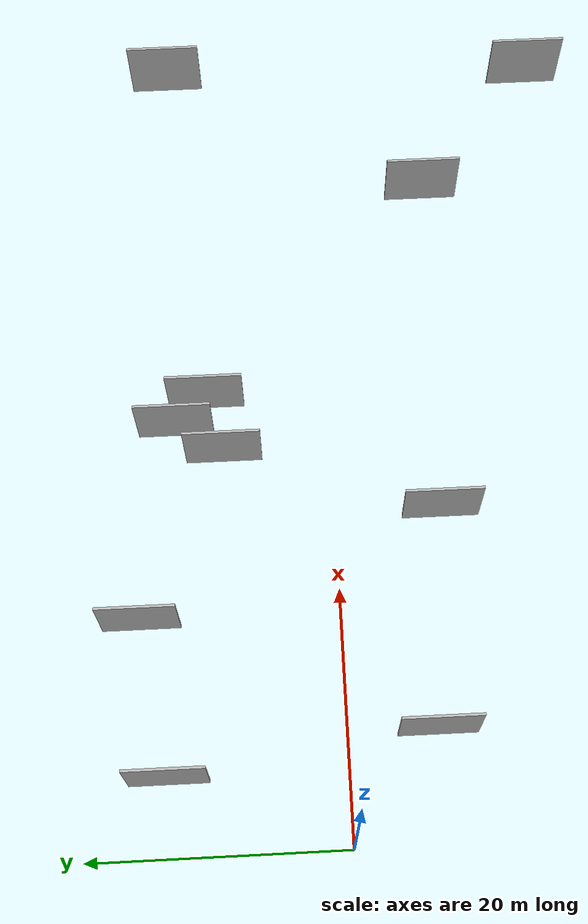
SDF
<sdf version="1.6">
 <world name="default">
  <scene>
   <sky><clouds><speed>12</speed></clouds></sky>
   <ambient>0.4 0.4 0.4 1</ambient>
   <background>0.7 0.7 0.7 1</background>
   <shadows>1</shadows>
  </scene>
  <gravity>0 0 -9.8066</gravity>
  <magnetic_field>6e-06 2.3e-05 -4.2e-05</magnetic_field>
  <physics default="0" name="default_physics" type="ode">
   <ode>
    <solver>
     <type>quick</type>
     <iters>10</iters>
     <sor>1.0</sor>
     <use_dynamic_moi_rescaling>0</use_dynamic_moi_rescaling>
    </solver>
    <constraints>
     <cfm>0</cfm>
     <erp>0.2</erp>
     <contact_max_correcting_vel>100</contact_max_correcting_vel>
     <contact_surface_layer>0.001</contact_surface_layer>
    </constraints>
   </ode>
   <max_step_size>0.004</max_step_size>
   <real_time_factor>1</real_time_factor>
   <real_time_update_rate>250</real_time_update_rate>
  </physics>
  <light name="sun" type="directional">
   <pose>0 0 10 0 0 0</pose>
   <diffuse>0.8 0.8 0.8 1</diffuse>
   <specular>0.2 0.2 0.2 1</specular>
   <attenuation>
    <range>1000</range>
    <constant>0.9</constant>
    <linear>0.01</linear>
    <quadratic>0.001</quadratic>
   </attenuation>
   <direction>-0.5 0.1 -0.9</direction>
  </light>
  <model name="grey_wall_1">
   <static>1</static>
   <pose>65.9148 12.7383 2.5 0.000000 0.000000 1.570796</pose>
   <link name="link">
    <pose>0 0 3.00 0 0 0</pose>
    <collision name="collision"><geometry><box><size>6.00 0.2 6.00</size></box></geometry></collision>
    <visual name="visual">
     <cast_shadows>0</cast_shadows>
     <geometry><box><size>6.00 0.2 6.00</size></box></geometry>
     <material>
      <script>
       <uri>model://HANNAS_wall/materials/scripts</uri>
       <uri>model://HANNAS_wall/materials/textures</uri>
       <name>vrc/HANNAS_wall</name>
      </script>
     </material>
    </visual>
   </link>
  </model>
  <model name="grey_wall_2">
   <static>1</static>
   <pose>30.3838 8.6435 2.5 0.000000 0.000000 1.570796</pose>
   <link name="link">
    <pose>0 0 3.00 0 0 0</pose>
    <collision name="collision"><geometry><box><size>6.00 0.2 6.00</size></box></geometry></collision>
    <visual name="visual">
     <cast_shadows>0</cast_shadows>
     <geometry><box><size>6.00 0.2 6.00</size></box></geometry>
     <material>
      <script>
       <uri>model://HANNAS_wall/materials/scripts</uri>
       <uri>model://HANNAS_wall/materials/textures</uri>
       <name>vrc/HANNAS_wall</name>
      </script>
     </material>
    </visual>
   </link>
  </model>
  <model name="grey_wall_3">
   <static>1</static>
   <pose>5.1232 13.3536 2.5 0.000000 0.000000 1.570796</pose>
   <link name="link">
    <pose>0 0 3.00 0 0 0</pose>
    <collision name="collision"><geometry><box><size>6.00 0.2 6.00</size></box></geometry></collision>
    <visual name="visual">
     <cast_shadows>0</cast_shadows>
     <geometry><box><size>6.00 0.2 6.00</size></box></geometry>
     <material>
      <script>
       <uri>model://HANNAS_wall/materials/scripts</uri>
       <uri>model://HANNAS_wall/materials/textures</uri>
       <name>vrc/HANNAS_wall</name>
      </script>
     </material>
    </visual>
   </link>
  </model>
  <model name="grey_wall_4">
   <static>1</static>
   <pose>65.2320 -18.4855 2.5 0.000000 0.000000 1.570796</pose>
   <link name="link">
    <pose>0 0 3.00 0 0 0</pose>
    <collision name="collision"><geometry><box><size>6.00 0.2 6.00</size></box></geometry></collision>
    <visual name="visual">
     <cast_shadows>0</cast_shadows>
     <geometry><box><size>6.00 0.2 6.00</size></box></geometry>
     <material>
      <script>
       <uri>model://HANNAS_wall/materials/scripts</uri>
       <uri>model://HANNAS_wall/materials/textures</uri>
       <name>vrc/HANNAS_wall</name>
      </script>
     </material>
    </visual>
   </link>
  </model>
  <model name="grey_wall_5">
   <static>1</static>
   <pose>32.7913 12.4099 2.5 0.000000 0.000000 1.570796</pose>
   <link name="link">
    <pose>0 0 3.00 0 0 0</pose>
    <collision name="collision"><geometry><box><size>6.00 0.2 6.00</size></box></geometry></collision>
    <visual name="visual">
     <cast_shadows>0</cast_shadows>
     <geometry><box><size>6.00 0.2 6.00</size></box></geometry>
     <material>
      <script>
       <uri>model://HANNAS_wall/materials/scripts</uri>
       <uri>model://HANNAS_wall/materials/textures</uri>
       <name>vrc/HANNAS_wall</name>
      </script>
     </material>
    </visual>
   </link>
  </model>
  <model name="grey_wall_6">
   <static>1</static>
   <pose>7.8575 -6.6211 2.5 0.000000 0.000000 1.570796</pose>
   <link name="link">
    <pose>0 0 3.00 0 0 0</pose>
    <collision name="collision"><geometry><box><size>6.00 0.2 6.00</size></box></geometry></collision>
    <visual name="visual">
     <cast_shadows>0</cast_shadows>
     <geometry><box><size>6.00 0.2 6.00</size></box></geometry>
     <material>
      <script>
       <uri>model://HANNAS_wall/materials/scripts</uri>
       <uri>model://HANNAS_wall/materials/textures</uri>
       <name>vrc/HANNAS_wall</name>
      </script>
     </material>
    </visual>
   </link>
  </model>
  <model name="grey_wall_7">
   <static>1</static>
   <pose>16.9147 15.3030 2.5 0.000000 0.000000 1.570796</pose>
   <link name="link">
    <pose>0 0 3.00 0 0 0</pose>
    <collision name="collision"><geometry><box><size>6.00 0.2 6.00</size></box></geometry></collision>
    <visual name="visual">
     <cast_shadows>0</cast_shadows>
     <geometry><box><size>6.00 0.2 6.00</size></box></geometry>
     <material>
      <script>
       <uri>model://HANNAS_wall/materials/scripts</uri>
       <uri>model://HANNAS_wall/materials/textures</uri>
       <name>vrc/HANNAS_wall</name>
      </script>
     </material>
    </visual>
   </link>
  </model>
  <model name="grey_wall_8">
   <static>1</static>
   <pose>53.7858 -8.6710 2.5 0.000000 0.000000 1.570796</pose>
   <link name="link">
    <pose>0 0 3.00 0 0 0</pose>
    <collision name="collision"><geometry><box><size>6.00 0.2 6.00</size></box></geometry></collision>
    <visual name="visual">
     <cast_shadows>0</cast_shadows>
     <geometry><box><size>6.00 0.2 6.00</size></box></geometry>
     <material>
      <script>
       <uri>model://HANNAS_wall/materials/scripts</uri>
       <uri>model://HANNAS_wall/materials/textures</uri>
       <name>vrc/HANNAS_wall</name>
      </script>
     </material>
    </visual>
   </link>
  </model>
  <model name="grey_wall_9">
   <static>1</static>
   <pose>35.1156 9.9266 2.5 0.000000 0.000000 1.570796</pose>
   <link name="link">
    <pose>0 0 3.00 0 0 0</pose>
    <collision name="collision"><geometry><box><size>6.00 0.2 6.00</size></box></geometry></collision>
    <visual name="visual">
     <cast_shadows>0</cast_shadows>
     <geometry><box><size>6.00 0.2 6.00</size></box></geometry>
     <material>
      <script>
       <uri>model://HANNAS_wall/materials/scripts</uri>
       <uri>model://HANNAS_wall/materials/textures</uri>
       <name>vrc/HANNAS_wall</name>
      </script>
     </material>
    </visual>
   </link>
  </model>
  <model name="grey_wall_10">
   <static>1</static>
   <pose>24.9094 -8.1357 2.5 0.000000 0.000000 1.570796</pose>
   <link name="link">
    <pose>0 0 3.00 0 0 0</pose>
    <collision name="collision"><geometry><box><size>6.00 0.2 6.00</size></box></geometry></collision>
    <visual name="visual">
     <cast_shadows>0</cast_shadows>
     <geometry><box><size>6.00 0.2 6.00</size></box></geometry>
     <material>
      <script>
       <uri>model://HANNAS_wall/materials/scripts</uri>
       <uri>model://HANNAS_wall/materials/textures</uri>
       <name>vrc/HANNAS_wall</name>
      </script>
     </material>
    </visual>
   </link>
  </model>
 </world>
</sdf>
